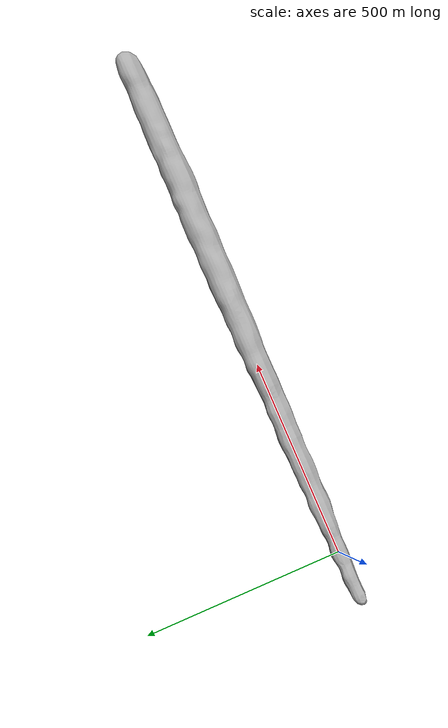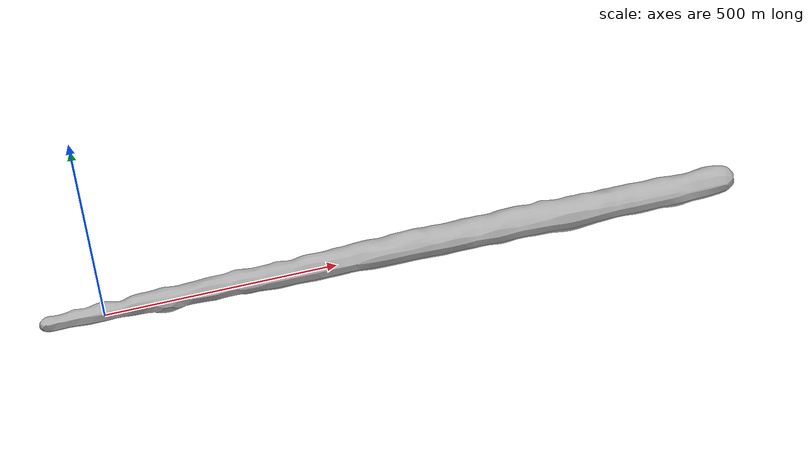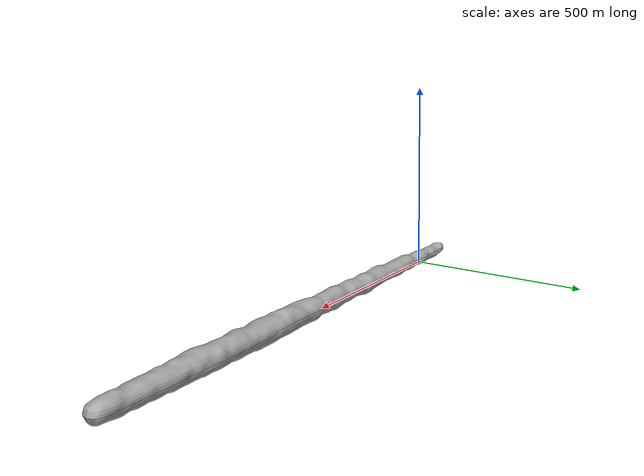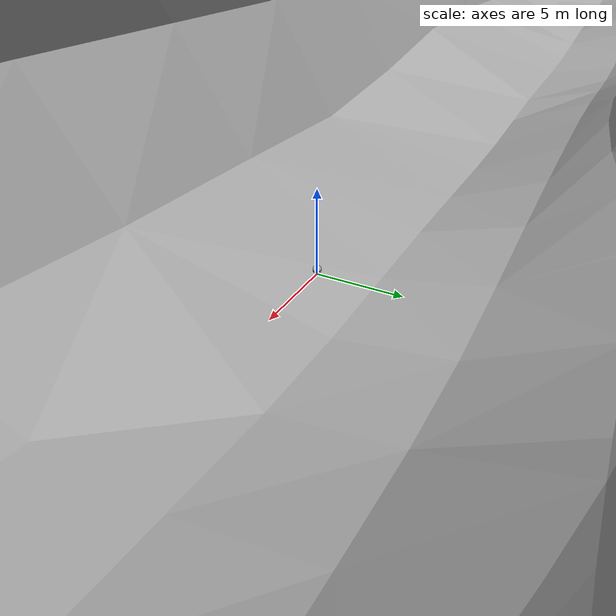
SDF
<?xml version="1.0" ?>
<sdf version="1.5">
    <world name="default">
        <!-- A global light source -->
        <include>
            <uri>model://sun</uri>
        </include>

        <gravity>0 0 -1.625</gravity>

        <!-- A ground plane -->

        <!-- Lava tube -->
        <include>
            <uri>model://tube</uri>
        </include>

        <!-- A testing model that includes the Velodyne sensor model -->
        <model name="SphereX">
            <include>
                <uri>model://spherex</uri>
            </include>

            <!-- Attach the plugin to this model -->
            <plugin name="spherex_control" filename="libspherex_plugin.so">
              <velocity>2</velocity>
            </plugin>
        </model>

    </world>
</sdf>

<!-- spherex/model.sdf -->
<sdf version='1.4'>
    <model name="SphereX">
        <!-- Give the base link a unique name -->
        <link name="SphereXOuter">
            <pose>0 0 0.3 1.57 0 0</pose>
            <inertial>
                <mass>2.5</mass>
                <inertia>
                    <ixx>0.75</ixx>
                    <iyy>0.75</iyy>
                    <izz>0.75</izz>
                    <ixy>0</ixy>
                    <ixz>0</ixz>
                    <iyz>0</iyz>
                </inertia>
            </inertial>
            <visual name="bottom_visual">
                <geometry>
                    <mesh>
                        <uri>model://spherex/spherex_bot.dae</uri>
                    </mesh>
                </geometry>
            </visual>

            <visual name="top_visual">
                <geometry>
                    <mesh>
                        <uri>model://spherex/spherex_top.dae</uri>
                    </mesh>
                </geometry>
            </visual>

            <collision name="spherex_collision">
                <geometry>
                    <sphere>
                        <radius>0.25</radius>
                    </sphere>
                </geometry>
            </collision>

        </link>

        <link name="SphereXMid">

            <sensor type="imu" name="imu">
                <pose>0 0 0 -1.57 0 0</pose>
                <update_rate>10</update_rate>
            </sensor>

            <sensor type="camera" name="cam1">
                <camera>
                    <pose>0 0 0 -1.57 0 0</pose>
                    <horizontal_fov>1</horizontal_fov>
                    <image>
                        <width>320</width>
                        <height>240</height>
                    </image>
                    <clip>
                        <far>30</far>
                    </clip>
                </camera>
                <update_rate>10</update_rate>
                <always_on>1</always_on>
            </sensor>

            <sensor type="ray" name="sensor">
                <topic>~/test_topic</topic>
                <pose>0 0 0 -1.57 0 0</pose>
                <update_rate>1</update_rate>
                <ray>
                    <scan>
                        <vertical>
                            <samples>16</samples>
                            <resolution>1</resolution>
                            <min_angle>0</min_angle>
                            <max_angle>0.3</max_angle>
                        </vertical>

                        <horizontal>
                            <samples>256</samples>
                            <resolution>1</resolution>
                            <min_angle>0.0</min_angle>
                            <max_angle>6.28</max_angle>
                        </horizontal>
                    </scan>
                    <range>
                        <min>0.28</min>
                        <max>15</max>
                        <resolution>0.02</resolution>
                    </range>
                </ray>
            </sensor>

            <pose>0 0 0.3 1.57 0 0</pose>
            <inertial>
                <mass>0.5</mass>
                <inertia>
                    <ixx>0.03</ixx>
                    <iyy>0.03</iyy>
                    <izz>0.03</izz>
                    <ixy>0</ixy>
                    <ixz>0</ixz>
                    <iyz>0</iyz>
                </inertia>
            </inertial>
            <visual name="mid_visual">
                <geometry>
                    <mesh>
                        <uri>model://spherex/spherex_mid.dae</uri>
                    </mesh>
                </geometry>
            </visual>
        </link>

        <joint name="center_pivot" type="revolute">
            <parent>SphereXOuter</parent>
            <child>SphereXMid</child>
            <axis>
                <limit>
                    <lower>0</lower>
                    <upper>10000000000000000</upper>
                </limit>
                <xyz>0 0 1</xyz>
            </axis>
        </joint>
    </model>
</sdf>

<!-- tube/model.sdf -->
<sdf version='1.4'>
    <model name="tube">
        <static>true</static>
        <!-- Give the base link a unique name -->
        <link name="tube_top">
            <pose>-100 -0.5 20 0 0 0</pose>
            <visual name="tube_top_vis">
                <geometry>
                    <mesh>
                        <uri>model://tube/poisson_top.dae</uri>
                    </mesh>
                </geometry>

                <material>
                    <ambient>0.662 0.662 0.662 1</ambient>
                    <diffuse>0.662 0.662 0.662 1</diffuse>
                    <specular>0.1 0.1 0.1 1</specular>
                    <emissive>0 0 0 0</emissive>
                </material>
            </visual>
        </link>

        <link name="tube_bot">
            <pose>-100 -0.5 20 0 0 0</pose>
            <visual name="tube_top_vis">
                <geometry>
                    <mesh>
                        <uri>model://tube/poisson_bot.dae</uri>
                    </mesh>
                </geometry>

                <material>
                    <ambient>0.662 0.662 0.662 1</ambient>
                    <diffuse>0.662 0.662 0.662 1</diffuse>
                    <specular>0.1 0.1 0.1 1</specular>
                    <emissive>0 0 0 0</emissive>
                </material>
            </visual>

            <collision name="tube_collision">
                <geometry>
                    <mesh>
                        <uri>model://tube/poisson_bot.dae</uri>
                    </mesh>
                </geometry>
            </collision>
        </link>
    </model>
</sdf>
